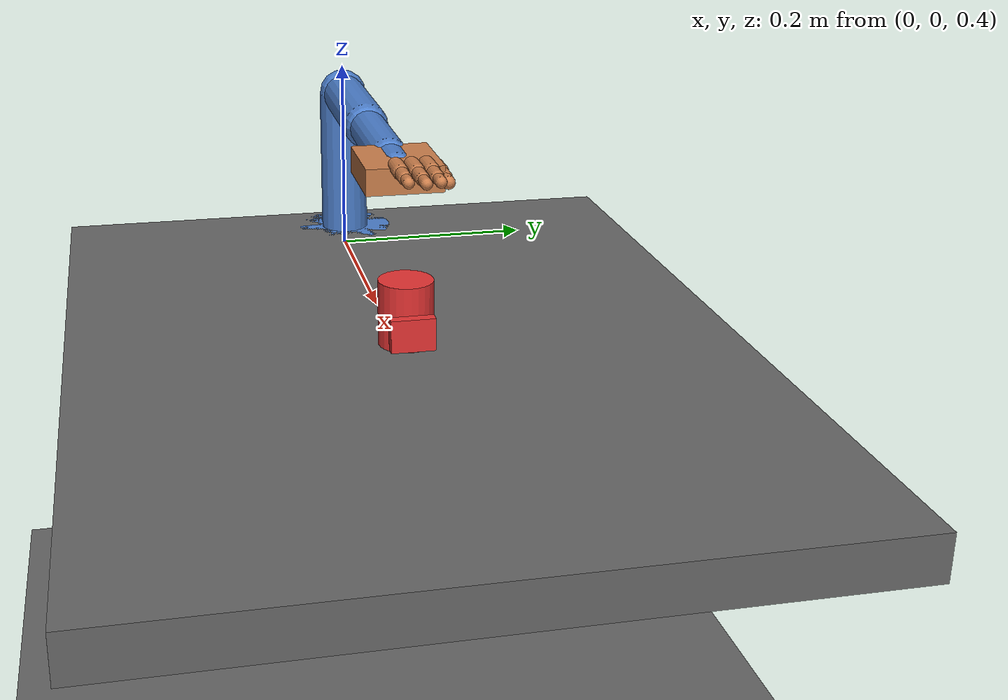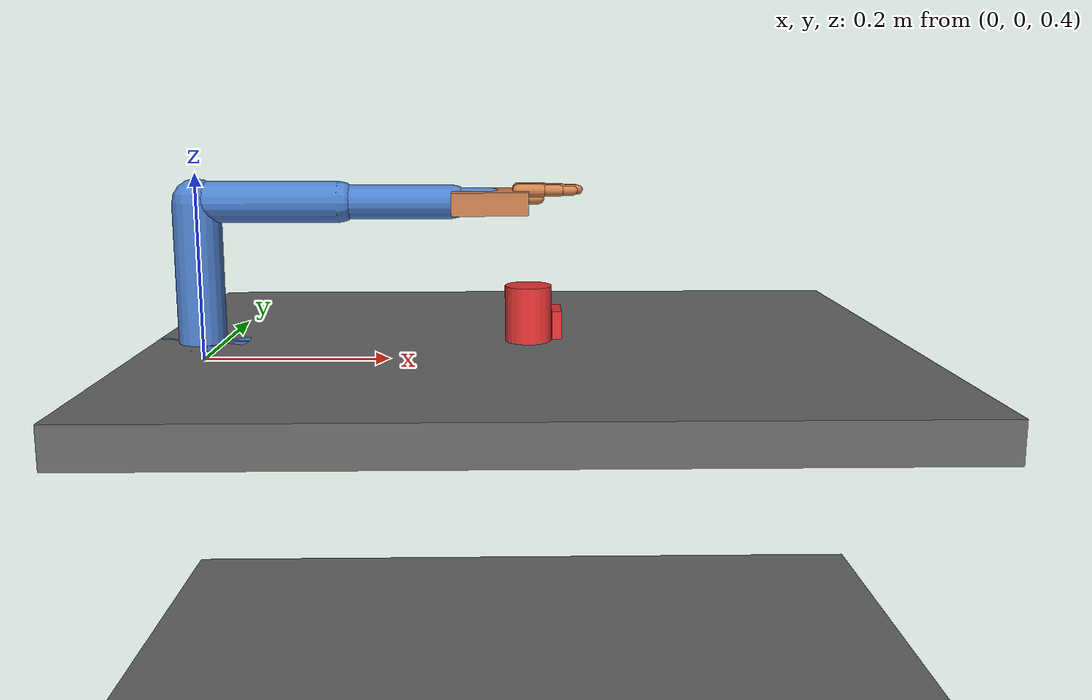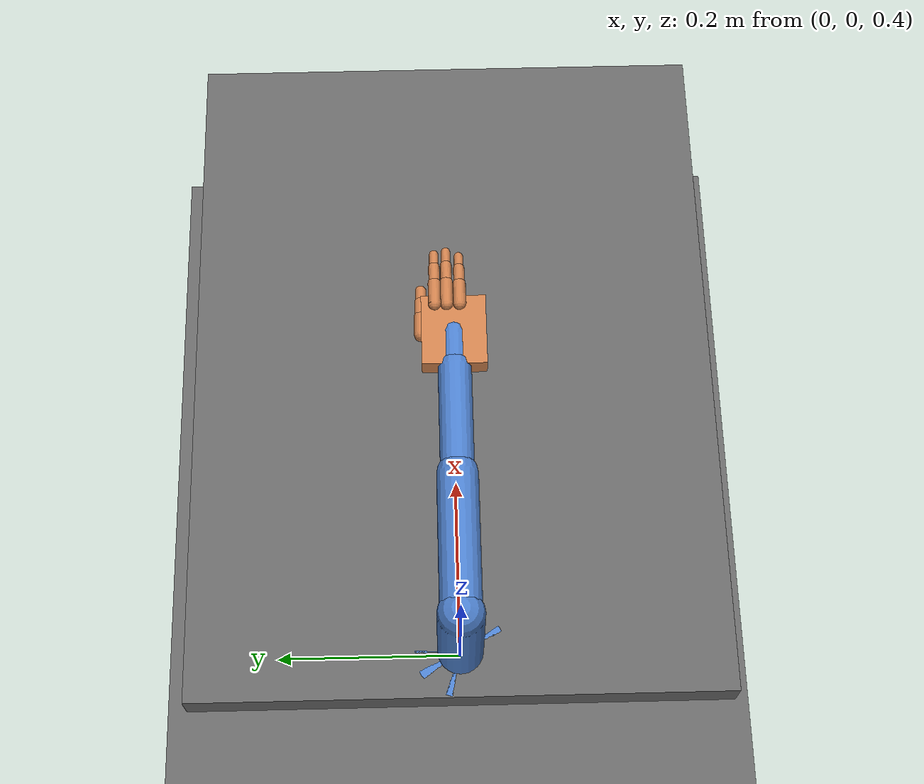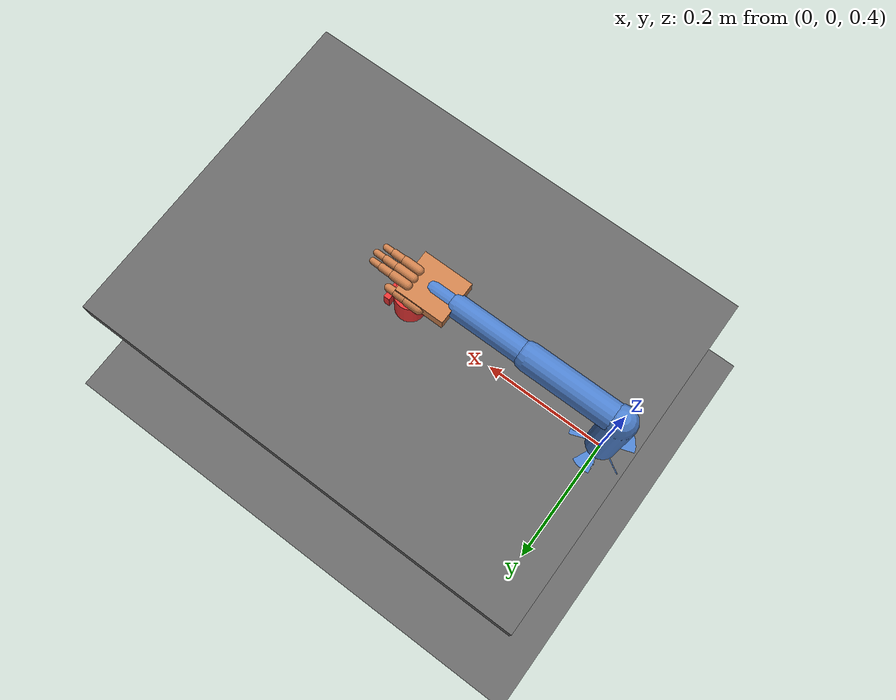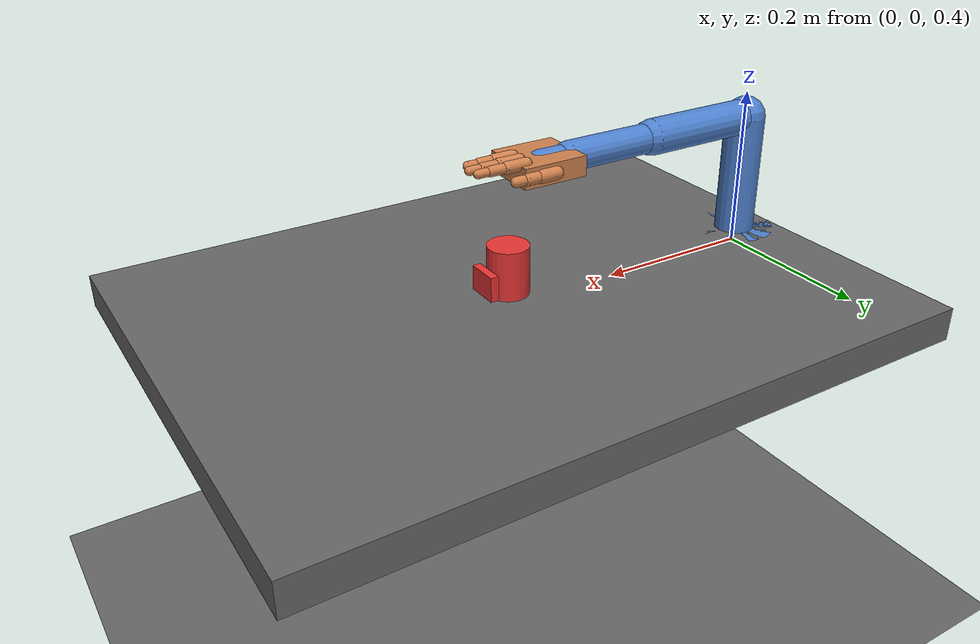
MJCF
<mujoco model="dexcrowd_arm">
  <option timestep="0.002" gravity="0 0 -9.81"/>

  <asset>
    <texture name="grid" type="2d" builtin="checker" rgb1="0.3 0.3 0.3" rgb2="0.5 0.5 0.5"
             width="512" height="512"/>
    <material name="floor_mat" texture="grid" texrepeat="4 4" reflectance="0.1"/>
    <material name="arm_mat" rgba="0.3 0.5 0.8 1"/>
    <material name="hand_mat" rgba="0.8 0.5 0.3 1"/>
    <material name="obj_mat" rgba="0.9 0.2 0.2 1"/>
  </asset>

  <worldbody>
    <light pos="0 0 3" dir="0 0 -1" diffuse="0.8 0.8 0.8"/>
    <light pos="1 1 2" dir="-1 -1 -1" diffuse="0.4 0.4 0.4"/>
    <geom name="floor" type="plane" size="2 2 0.1" material="floor_mat" pos="0 0 0"/>

    <!-- Table -->
    <geom name="table" type="box" size="0.4 0.3 0.02" pos="0.35 0 0.4" material="floor_mat"/>

    <!-- Object to manipulate (red cylinder = mug) -->
    <body name="object" pos="0.35 0 0.44">
      <freejoint name="obj_joint"/>
      <geom name="obj_body" type="cylinder" size="0.025 0.04" material="obj_mat"/>
      <geom name="obj_handle" type="box" size="0.005 0.02 0.015" pos="0.03 0 0" material="obj_mat"/>
    </body>

    <!-- Robot arm base -->
    <body name="base" pos="0 0 0.4">
      <geom name="base_g" type="cylinder" size="0.05 0.02" material="arm_mat"/>

      <!-- Link 1: shoulder -->
      <body name="link1" pos="0 0 0.02">
        <joint name="shoulder_pan" type="hinge" axis="0 0 1" range="-3.14 3.14"/>
        <geom name="link1_g" type="capsule" fromto="0 0 0 0 0 0.15" size="0.025" material="arm_mat"/>

        <!-- Link 2: upper arm -->
        <body name="link2" pos="0 0 0.15">
          <joint name="shoulder_lift" type="hinge" axis="0 1 0" range="-1.57 1.57"/>
          <geom name="link2_g" type="capsule" fromto="0 0 0 0.15 0 0" size="0.022" material="arm_mat"/>

          <!-- Link 3: elbow -->
          <body name="link3" pos="0.15 0 0">
            <joint name="elbow" type="hinge" axis="0 1 0" range="-2.0 2.0"/>
            <geom name="link3_g" type="capsule" fromto="0 0 0 0.12 0 0" size="0.018" material="arm_mat"/>

            <!-- Link 4: wrist -->
            <body name="link4" pos="0.12 0 0">
              <joint name="wrist_roll" type="hinge" axis="1 0 0" range="-3.14 3.14"/>
              <geom name="link4_g" type="capsule" fromto="0 0 0 0.04 0 0" size="0.015" material="arm_mat"/>

              <!-- Hand palm -->
              <body name="palm" pos="0.04 0 0">
                <geom name="palm_g" type="box" size="0.04 0.035 0.012" material="hand_mat"/>

                <!-- Index finger (3 links) -->
                <body name="index_prox" pos="0.03 0.02 0.012">
                  <joint name="index_j0" type="hinge" axis="0 1 0" range="0.263 1.396"/>
                  <geom type="capsule" fromto="0 0 0 0.025 0 0" size="0.007" material="hand_mat"/>
                  <body name="index_mid" pos="0.025 0 0">
                    <joint name="index_j1" type="hinge" axis="0 1 0" range="-0.105 1.163"/>
                    <geom type="capsule" fromto="0 0 0 0.02 0 0" size="0.006" material="hand_mat"/>
                    <body name="index_dist" pos="0.02 0 0">
                      <joint name="index_j2" type="hinge" axis="0 1 0" range="-0.189 1.644"/>
                      <geom type="capsule" fromto="0 0 0 0.015 0 0" size="0.005" material="hand_mat"/>
                    </body>
                  </body>
                </body>

                <!-- Middle finger -->
                <body name="middle_prox" pos="0.03 0.007 0.012">
                  <joint name="middle_j0" type="hinge" axis="0 1 0" range="0.263 1.396"/>
                  <geom type="capsule" fromto="0 0 0 0.026 0 0" size="0.007" material="hand_mat"/>
                  <body name="middle_mid" pos="0.026 0 0">
                    <joint name="middle_j1" type="hinge" axis="0 1 0" range="-0.105 1.163"/>
                    <geom type="capsule" fromto="0 0 0 0.021 0 0" size="0.006" material="hand_mat"/>
                    <body name="middle_dist" pos="0.021 0 0">
                      <joint name="middle_j2" type="hinge" axis="0 1 0" range="-0.189 1.644"/>
                      <geom type="capsule" fromto="0 0 0 0.016 0 0" size="0.005" material="hand_mat"/>
                    </body>
                  </body>
                </body>

                <!-- Ring finger -->
                <body name="ring_prox" pos="0.03 -0.007 0.012">
                  <joint name="ring_j0" type="hinge" axis="0 1 0" range="0.263 1.396"/>
                  <geom type="capsule" fromto="0 0 0 0.024 0 0" size="0.007" material="hand_mat"/>
                  <body name="ring_mid" pos="0.024 0 0">
                    <joint name="ring_j1" type="hinge" axis="0 1 0" range="-0.105 1.163"/>
                    <geom type="capsule" fromto="0 0 0 0.019 0 0" size="0.006" material="hand_mat"/>
                    <body name="ring_dist" pos="0.019 0 0">
                      <joint name="ring_j2" type="hinge" axis="0 1 0" range="-0.189 1.644"/>
                      <geom type="capsule" fromto="0 0 0 0.014 0 0" size="0.005" material="hand_mat"/>
                    </body>
                  </body>
                </body>

                <!-- Thumb -->
                <body name="thumb_base" pos="0 0.035 0">
                  <joint name="thumb_j0" type="hinge" axis="0 0 1" range="0.263 1.396"/>
                  <geom type="capsule" fromto="0 0 0 0.02 0 0" size="0.008" material="hand_mat"/>
                  <body name="thumb_mid" pos="0.02 0 0">
                    <joint name="thumb_j1" type="hinge" axis="0 1 0" range="-0.105 1.163"/>
                    <geom type="capsule" fromto="0 0 0 0.018 0 0" size="0.007" material="hand_mat"/>
                    <body name="thumb_dist" pos="0.018 0 0">
                      <joint name="thumb_j2" type="hinge" axis="0 1 0" range="-0.189 1.644"/>
                      <geom type="capsule" fromto="0 0 0 0.014 0 0" size="0.006" material="hand_mat"/>
                    </body>
                  </body>
                </body>

              </body>
            </body>
          </body>
        </body>
      </body>
    </body>
  </worldbody>

  <actuator>
    <position name="act_shoulder_pan"  joint="shoulder_pan"  kp="200" kv="20"/>
    <position name="act_shoulder_lift" joint="shoulder_lift" kp="200" kv="20"/>
    <position name="act_elbow"         joint="elbow"         kp="150" kv="15"/>
    <position name="act_wrist_roll"    joint="wrist_roll"    kp="100" kv="10"/>
    <position name="act_index_j0"      joint="index_j0"      kp="30" kv="3"/>
    <position name="act_index_j1"      joint="index_j1"      kp="20" kv="2"/>
    <position name="act_index_j2"      joint="index_j2"      kp="15" kv="1.5"/>
    <position name="act_middle_j0"     joint="middle_j0"     kp="30" kv="3"/>
    <position name="act_middle_j1"     joint="middle_j1"     kp="20" kv="2"/>
    <position name="act_middle_j2"     joint="middle_j2"     kp="15" kv="1.5"/>
    <position name="act_ring_j0"       joint="ring_j0"       kp="30" kv="3"/>
    <position name="act_ring_j1"       joint="ring_j1"       kp="20" kv="2"/>
    <position name="act_ring_j2"       joint="ring_j2"       kp="15" kv="1.5"/>
    <position name="act_thumb_j0"      joint="thumb_j0"      kp="30" kv="3"/>
    <position name="act_thumb_j1"      joint="thumb_j1"      kp="20" kv="2"/>
    <position name="act_thumb_j2"      joint="thumb_j2"      kp="15" kv="1.5"/>
  </actuator>

  <sensor>
    <framepos name="palm_pos" objtype="body" objname="palm"/>
  </sensor>
</mujoco>
